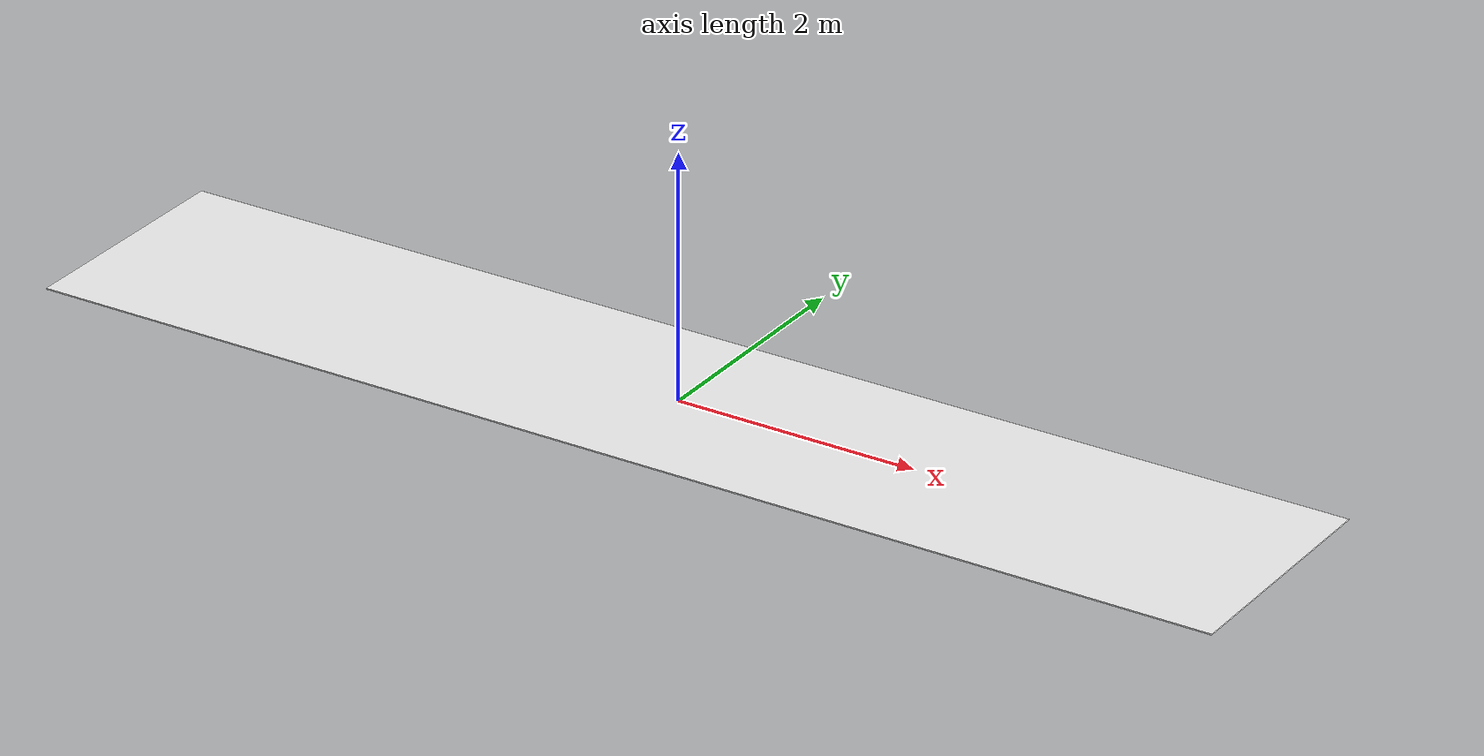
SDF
<?xml version="1.0" ?>
<sdf version="1.6">
  <model name="crosswalk">
    <static>true</static>
    <link name="link">
      <visual name="visual">
        <geometry>
          <box>
            <size>10 2 0.01</size>
          </box>
        </geometry>
        <material>
          <ambient>1 1 1 1</ambient>
          <diffuse>1 1 1 1</diffuse>
        </material>
      </visual>
      <collision name="collision">
        <geometry>
          <box>
            <size>10 2 0.01</size>
          </box>
        </geometry>
      </collision>
    </link>
  </model>
</sdf>
